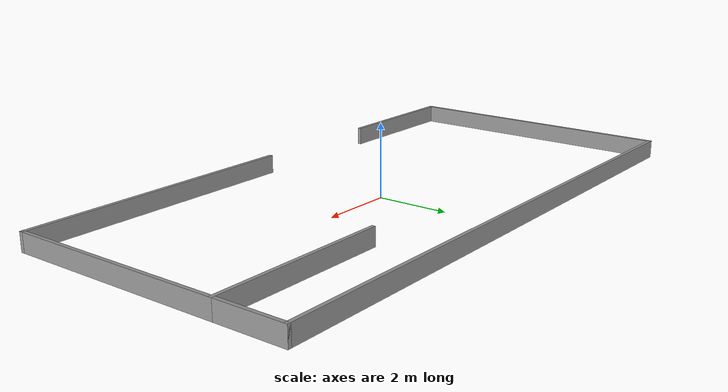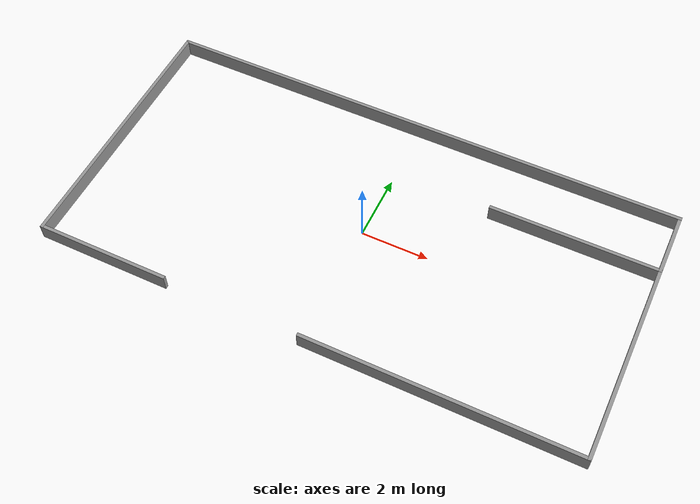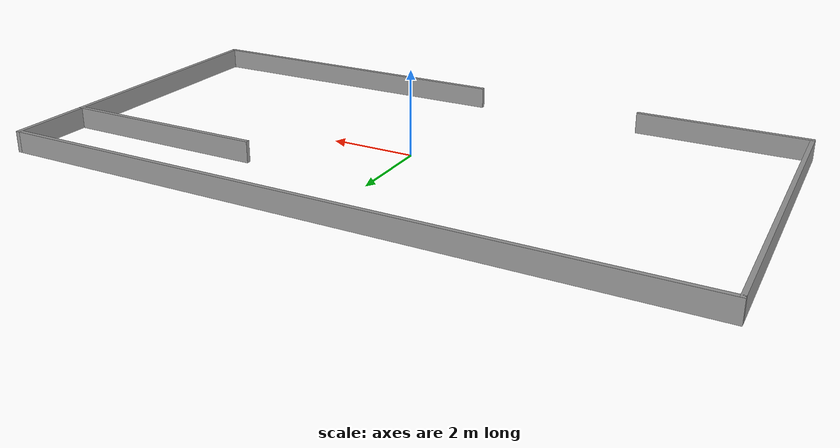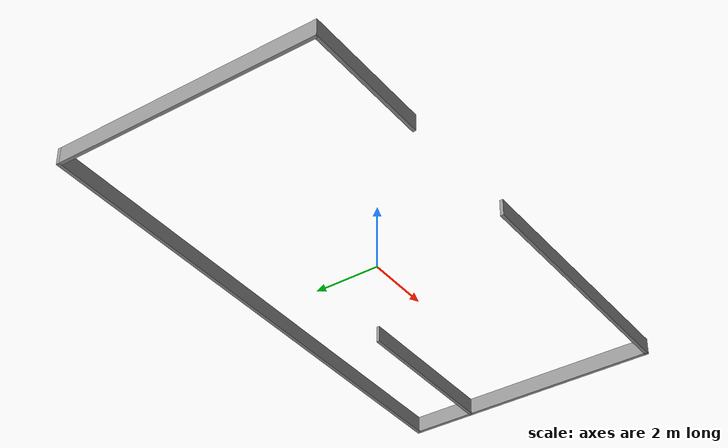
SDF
<?xml version='1.0'?>
<sdf version='1.6'>
  <model name='shape2'>
    <pose frame=''>-0.02596 0.028 0 0 -0 0</pose>
    <link name='Wall_0'>
      <collision name='Wall_0_Collision'>
        <geometry>
          <box>
            <size>7.94986 0.1 0.5</size>
          </box>
        </geometry>
        <pose frame=''>0 0 0.25 0 -0 0</pose>
      </collision>
      <visual name='Wall_0_Visual'>
        <pose frame=''>0 0 0.25 0 -0 0</pose>
        <geometry>
          <box>
            <size>7.94986 0.1 0.5</size>
          </box>
        </geometry>
        <material>
          <script>
            <uri>file://media/materials/scripts/gazebo.material</uri>
            <name>Gazebo/Grey</name>
          </script>
          <ambient>1 1 1 1</ambient>
        </material>
        <meta>
          <layer>0</layer>
        </meta>
      </visual>
      <pose frame=''>-7.95004 0 0 0 -0 -1.5708</pose>
    </link>
    <link name='Wall_1'>
      <collision name='Wall_1_Collision'>
        <geometry>
          <box>
            <size>4 0.1 0.5</size>
          </box>
        </geometry>
        <pose frame=''>0 0 0.25 0 -0 0</pose>
      </collision>
      <visual name='Wall_1_Visual'>
        <pose frame=''>0 0 0.25 0 -0 0</pose>
        <geometry>
          <box>
            <size>4 0.1 0.5</size>
          </box>
        </geometry>
        <material>
          <script>
            <uri>file://media/materials/scripts/gazebo.material</uri>
            <name>Gazebo/Grey</name>
          </script>
          <ambient>1 1 1 1</ambient>
        </material>
        <meta>
          <layer>0</layer>
        </meta>
      </visual>
      <pose frame=''>-6.00004 -3.925 0 0 -0 0</pose>
    </link>
    <link name='Wall_3'>
      <collision name='Wall_3_Collision'>
        <geometry>
          <box>
            <size>16 0.1 0.5</size>
          </box>
        </geometry>
        <pose frame=''>0 0 0.25 0 -0 0</pose>
      </collision>
      <visual name='Wall_3_Visual'>
        <pose frame=''>0 0 0.25 0 -0 0</pose>
        <geometry>
          <box>
            <size>16 0.1 0.5</size>
          </box>
        </geometry>
        <material>
          <script>
            <uri>file://media/materials/scripts/gazebo.material</uri>
            <name>Gazebo/Grey</name>
          </script>
          <ambient>1 1 1 1</ambient>
        </material>
        <meta>
          <layer>0</layer>
        </meta>
      </visual>
      <pose frame=''>-4e-05 3.925 0 0 -0 0</pose>
    </link>
    <link name='Wall_4'>
      <collision name='Wall_4_Collision'>
        <geometry>
          <box>
            <size>2 0.1 0.5</size>
          </box>
        </geometry>
        <pose frame=''>0 0 0.25 0 -0 0</pose>
      </collision>
      <visual name='Wall_4_Visual'>
        <pose frame=''>0 0 0.25 0 -0 0</pose>
        <geometry>
          <box>
            <size>2 0.1 0.5</size>
          </box>
        </geometry>
        <material>
          <script>
            <uri>file://media/materials/scripts/gazebo.material</uri>
            <name>Gazebo/Grey</name>
          </script>
          <ambient>1 1 1 1</ambient>
        </material>
        <meta>
          <layer>0</layer>
        </meta>
      </visual>
      <pose frame=''>7.94996 2.975 0 0 -0 -1.5708</pose>
    </link>
    <link name='Wall_5'>
      <collision name='Wall_5_Collision'>
        <geometry>
          <box>
            <size>5 0.1 0.5</size>
          </box>
        </geometry>
        <pose frame=''>0 0 0.25 0 -0 0</pose>
      </collision>
      <visual name='Wall_5_Visual'>
        <pose frame=''>0 0 0.25 0 -0 0</pose>
        <geometry>
          <box>
            <size>5 0.1 0.5</size>
          </box>
        </geometry>
        <material>
          <script>
            <uri>file://media/materials/scripts/gazebo.material</uri>
            <name>Gazebo/Grey</name>
          </script>
          <ambient>1 1 1 1</ambient>
        </material>
        <meta>
          <layer>0</layer>
        </meta>
      </visual>
      <pose frame=''>5.49996 2.025 0 0 -0 3.14159</pose>
    </link>
    <link name='Wall_7'>
      <collision name='Wall_7_Collision'>
        <geometry>
          <box>
            <size>6.05 0.1 0.5</size>
          </box>
        </geometry>
        <pose frame=''>0 0 0.25 0 -0 0</pose>
      </collision>
      <visual name='Wall_7_Visual'>
        <pose frame=''>0 0 0.25 0 -0 0</pose>
        <geometry>
          <box>
            <size>6.05 0.1 0.5</size>
          </box>
        </geometry>
        <material>
          <script>
            <uri>file://media/materials/scripts/gazebo.material</uri>
            <name>Gazebo/Grey</name>
          </script>
          <ambient>1 1 1 1</ambient>
        </material>
        <meta>
          <layer>0</layer>
        </meta>
      </visual>
      <pose frame=''>7.94996 -0.95 0 0 -0 -1.5708</pose>
    </link>
    <link name='Wall_8'>
      <collision name='Wall_8_Collision'>
        <geometry>
          <box>
            <size>8.00016 0.1 0.5</size>
          </box>
        </geometry>
        <pose frame=''>0 0 0.25 0 -0 0</pose>
      </collision>
      <visual name='Wall_8_Visual'>
        <pose frame=''>0 0 0.25 0 -0 0</pose>
        <geometry>
          <box>
            <size>8.00016 0.1 0.5</size>
          </box>
        </geometry>
        <material>
          <script>
            <uri>file://media/materials/scripts/gazebo.material</uri>
            <name>Gazebo/Grey</name>
          </script>
          <ambient>1 1 1 1</ambient>
        </material>
        <meta>
          <layer>0</layer>
        </meta>
      </visual>
      <pose frame=''>3.99996 -3.925 0 0 -0 3.14159</pose>
    </link>
    <static>1</static>
  </model>
</sdf>
